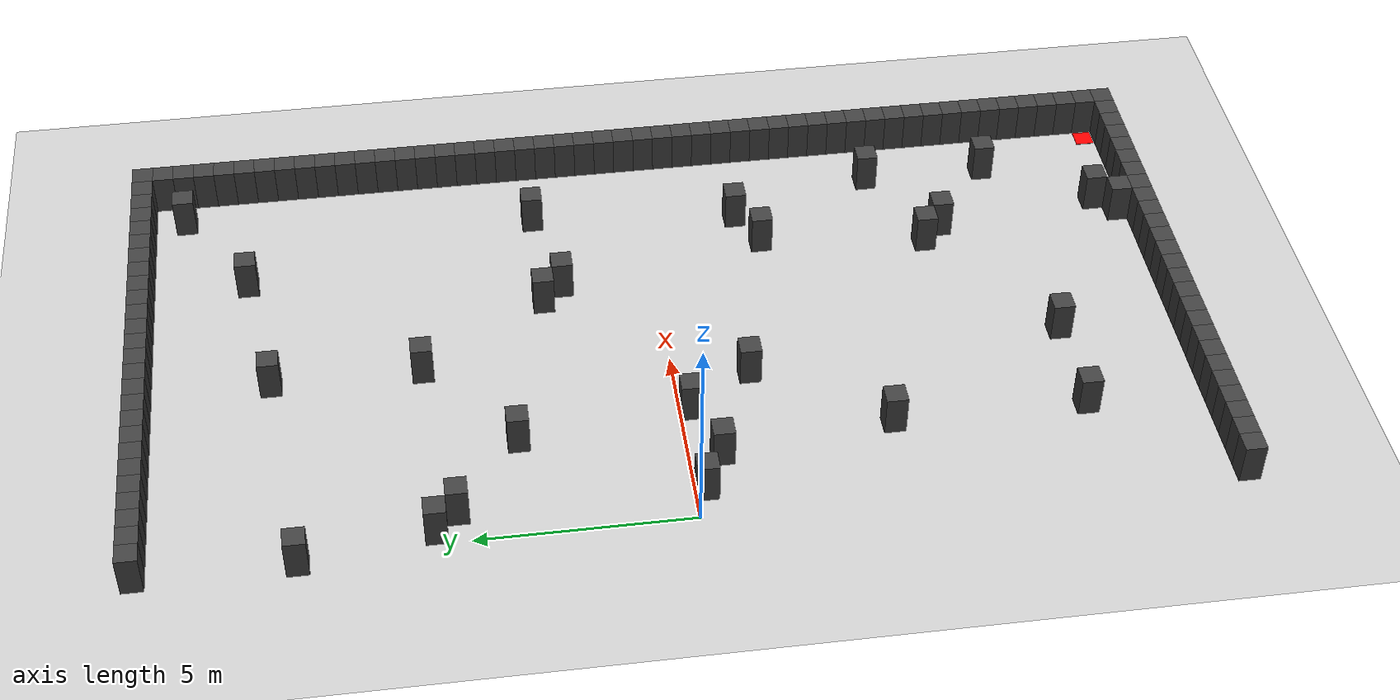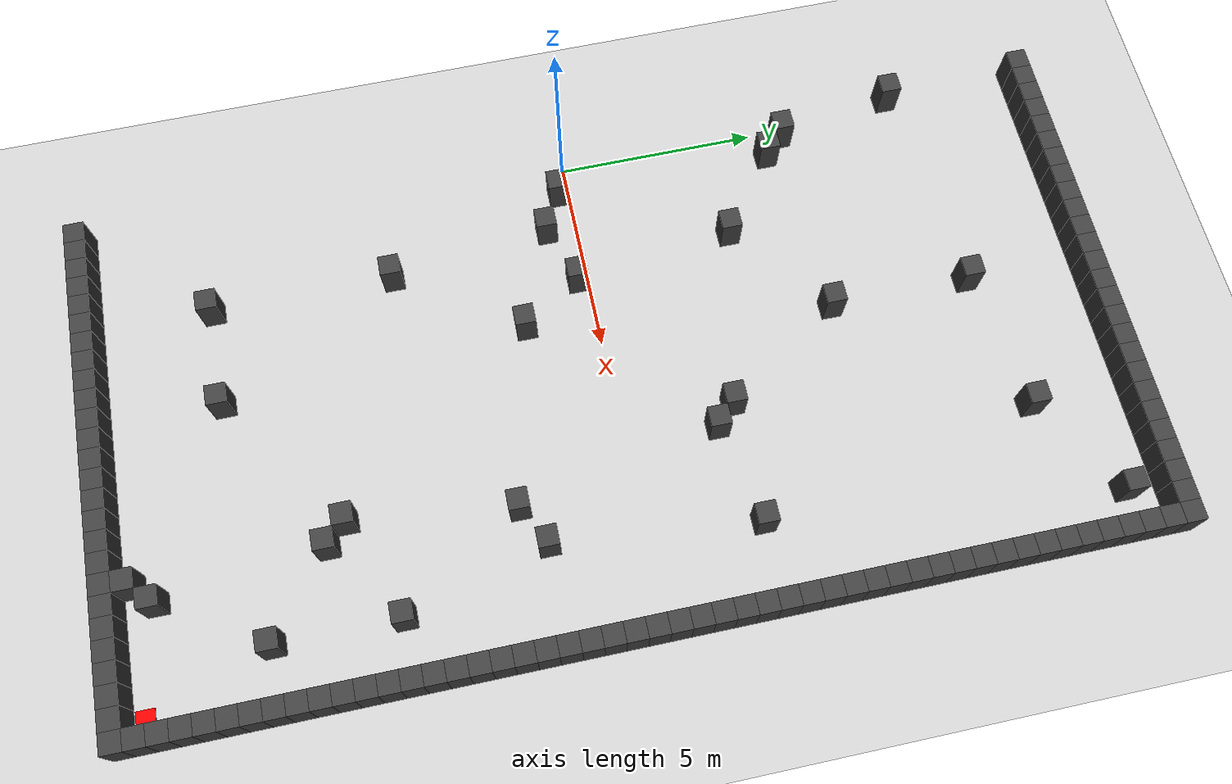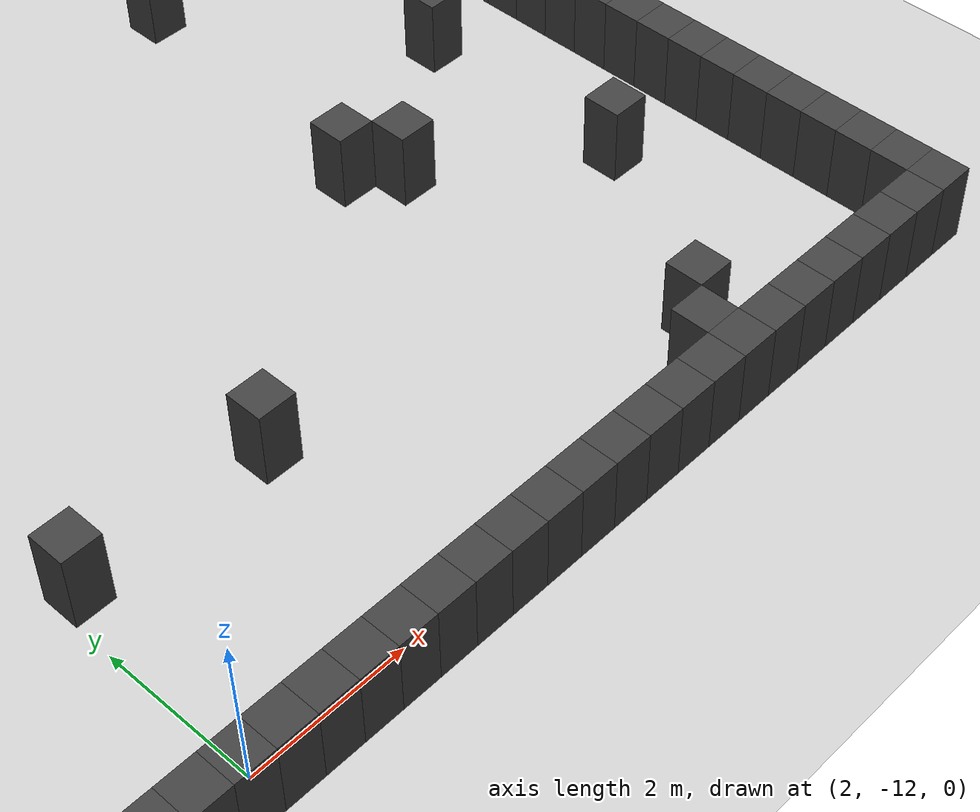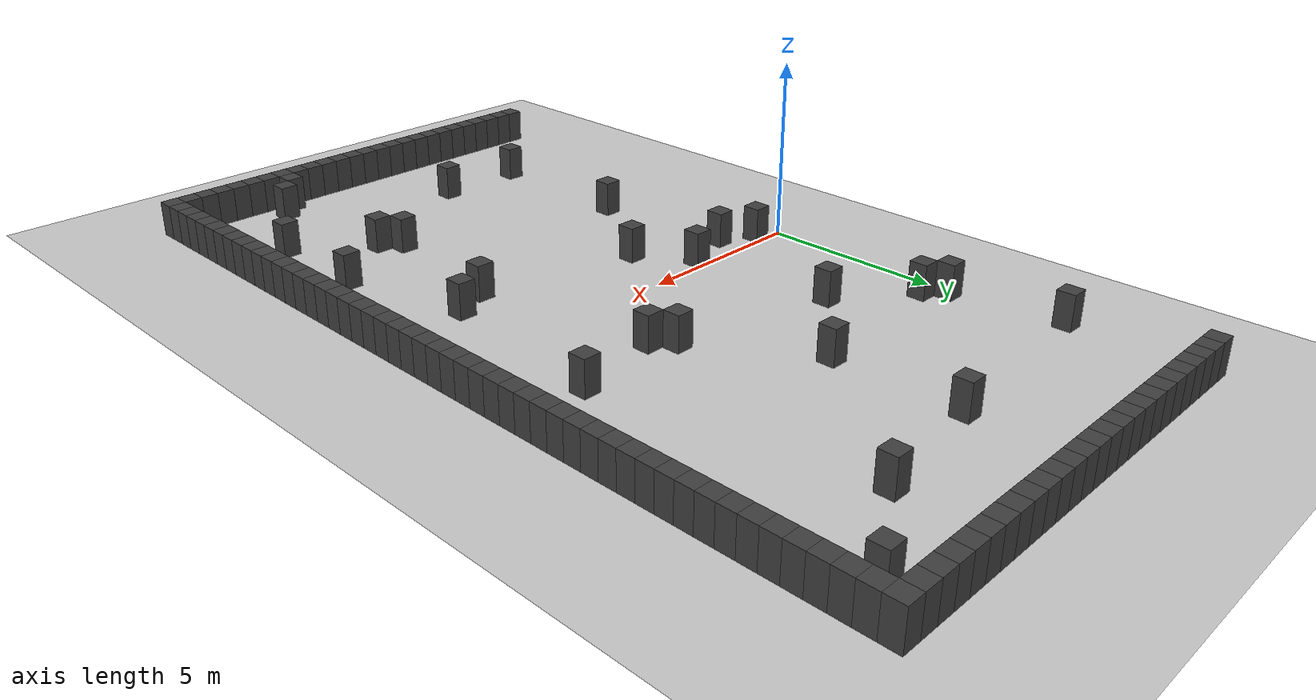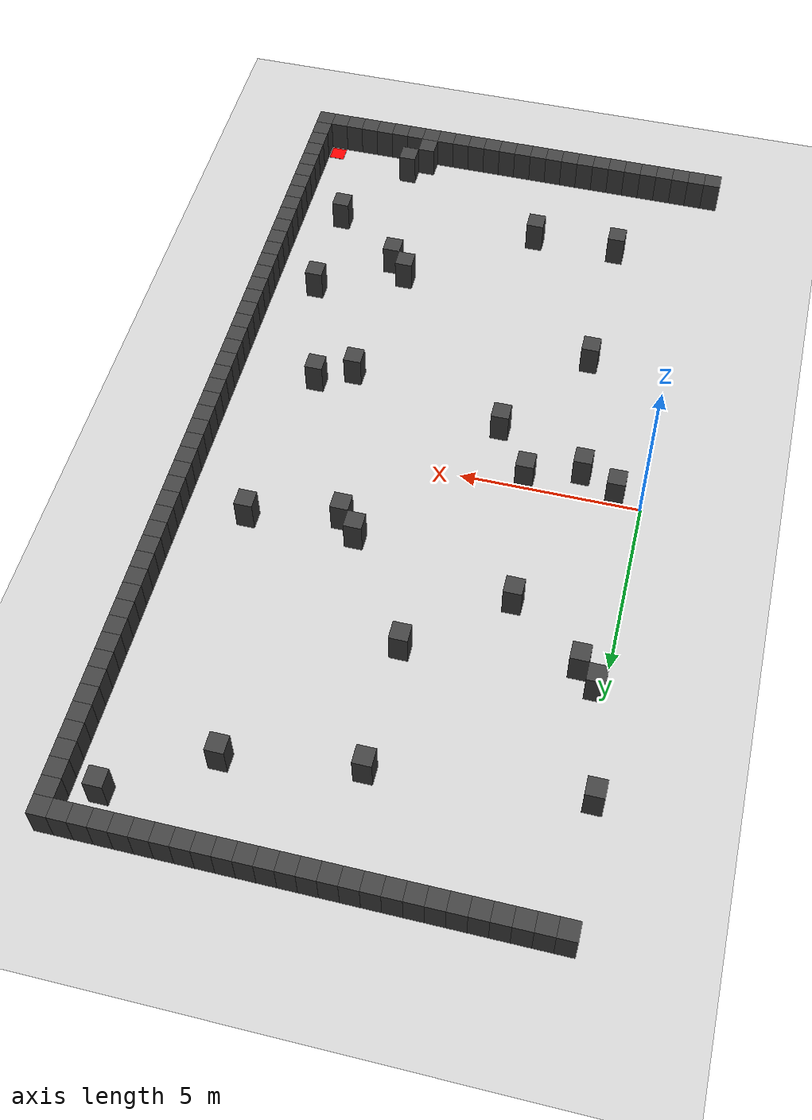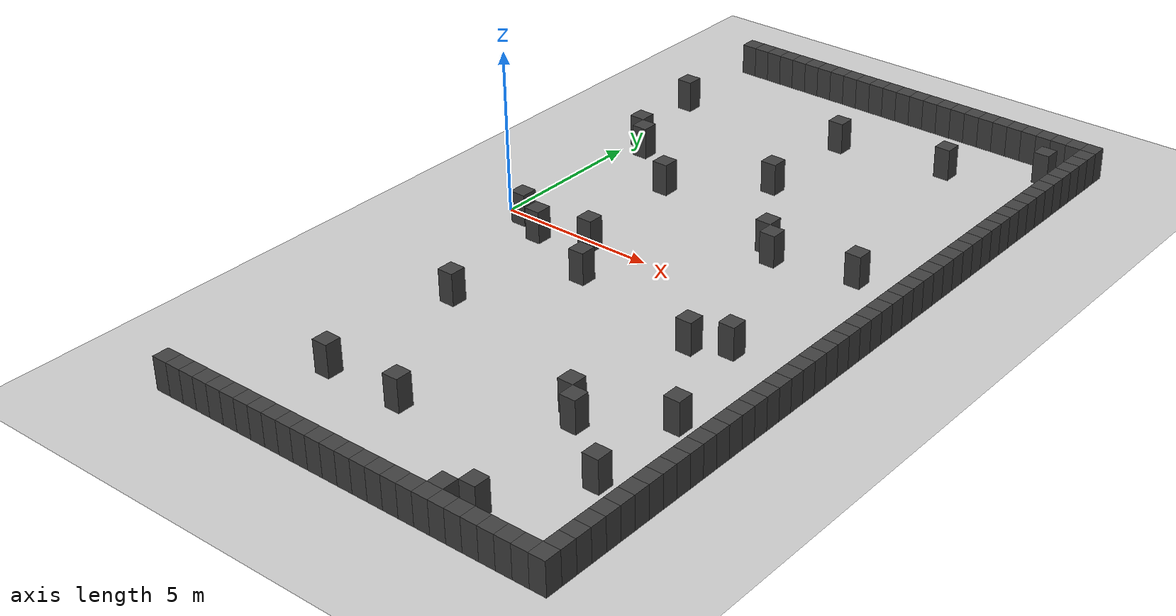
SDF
<sdf version="1.7">
 <world name="map_62">
  <model name="ground_plane">
   <static>true</static>
   <link name="link">
    <collision name="collision">
     <geometry><plane><normal>0 0 1</normal><size>200 200</size></plane></geometry>
    </collision>
    <visual name="visual">
     <geometry><plane><normal>0 0 1</normal><size>200 200</size></plane></geometry>
     <material><ambient>0.8 0.8 0.8 1</ambient><diffuse>0.8 0.8 0.8 1</diffuse></material>
    </visual>
   </link>
  </model>
  <model name="maze_environment">
   <static>true</static>
   <link name="wall_24">
    <pose>-0.250 12.250 0.500 0 0 0</pose>
    <collision name="col"><geometry><box><size>0.5 0.5 1.0</size></box></geometry></collision>
    <visual name="vis">
     <geometry><box><size>0.5 0.5 1.0</size></box></geometry>
     <material><ambient>0.15 0.15 0.15 1</ambient><diffuse>0.25 0.25 0.25 1</diffuse></material>
    </visual>
   </link>
   <link name="wall_25">
    <pose>0.250 12.250 0.500 0 0 0</pose>
    <collision name="col"><geometry><box><size>0.5 0.5 1.0</size></box></geometry></collision>
    <visual name="vis">
     <geometry><box><size>0.5 0.5 1.0</size></box></geometry>
     <material><ambient>0.15 0.15 0.15 1</ambient><diffuse>0.25 0.25 0.25 1</diffuse></material>
    </visual>
   </link>
   <link name="wall_26">
    <pose>0.750 12.250 0.500 0 0 0</pose>
    <collision name="col"><geometry><box><size>0.5 0.5 1.0</size></box></geometry></collision>
    <visual name="vis">
     <geometry><box><size>0.5 0.5 1.0</size></box></geometry>
     <material><ambient>0.15 0.15 0.15 1</ambient><diffuse>0.25 0.25 0.25 1</diffuse></material>
    </visual>
   </link>
   <link name="wall_27">
    <pose>1.250 12.250 0.500 0 0 0</pose>
    <collision name="col"><geometry><box><size>0.5 0.5 1.0</size></box></geometry></collision>
    <visual name="vis">
     <geometry><box><size>0.5 0.5 1.0</size></box></geometry>
     <material><ambient>0.15 0.15 0.15 1</ambient><diffuse>0.25 0.25 0.25 1</diffuse></material>
    </visual>
   </link>
   <link name="wall_28">
    <pose>1.750 12.250 0.500 0 0 0</pose>
    <collision name="col"><geometry><box><size>0.5 0.5 1.0</size></box></geometry></collision>
    <visual name="vis">
     <geometry><box><size>0.5 0.5 1.0</size></box></geometry>
     <material><ambient>0.15 0.15 0.15 1</ambient><diffuse>0.25 0.25 0.25 1</diffuse></material>
    </visual>
   </link>
   <link name="wall_29">
    <pose>2.250 12.250 0.500 0 0 0</pose>
    <collision name="col"><geometry><box><size>0.5 0.5 1.0</size></box></geometry></collision>
    <visual name="vis">
     <geometry><box><size>0.5 0.5 1.0</size></box></geometry>
     <material><ambient>0.15 0.15 0.15 1</ambient><diffuse>0.25 0.25 0.25 1</diffuse></material>
    </visual>
   </link>
   <link name="wall_30">
    <pose>2.750 12.250 0.500 0 0 0</pose>
    <collision name="col"><geometry><box><size>0.5 0.5 1.0</size></box></geometry></collision>
    <visual name="vis">
     <geometry><box><size>0.5 0.5 1.0</size></box></geometry>
     <material><ambient>0.15 0.15 0.15 1</ambient><diffuse>0.25 0.25 0.25 1</diffuse></material>
    </visual>
   </link>
   <link name="wall_31">
    <pose>3.250 12.250 0.500 0 0 0</pose>
    <collision name="col"><geometry><box><size>0.5 0.5 1.0</size></box></geometry></collision>
    <visual name="vis">
     <geometry><box><size>0.5 0.5 1.0</size></box></geometry>
     <material><ambient>0.15 0.15 0.15 1</ambient><diffuse>0.25 0.25 0.25 1</diffuse></material>
    </visual>
   </link>
   <link name="wall_32">
    <pose>3.750 12.250 0.500 0 0 0</pose>
    <collision name="col"><geometry><box><size>0.5 0.5 1.0</size></box></geometry></collision>
    <visual name="vis">
     <geometry><box><size>0.5 0.5 1.0</size></box></geometry>
     <material><ambient>0.15 0.15 0.15 1</ambient><diffuse>0.25 0.25 0.25 1</diffuse></material>
    </visual>
   </link>
   <link name="wall_33">
    <pose>4.250 12.250 0.500 0 0 0</pose>
    <collision name="col"><geometry><box><size>0.5 0.5 1.0</size></box></geometry></collision>
    <visual name="vis">
     <geometry><box><size>0.5 0.5 1.0</size></box></geometry>
     <material><ambient>0.15 0.15 0.15 1</ambient><diffuse>0.25 0.25 0.25 1</diffuse></material>
    </visual>
   </link>
   <link name="wall_34">
    <pose>4.750 12.250 0.500 0 0 0</pose>
    <collision name="col"><geometry><box><size>0.5 0.5 1.0</size></box></geometry></collision>
    <visual name="vis">
     <geometry><box><size>0.5 0.5 1.0</size></box></geometry>
     <material><ambient>0.15 0.15 0.15 1</ambient><diffuse>0.25 0.25 0.25 1</diffuse></material>
    </visual>
   </link>
   <link name="wall_35">
    <pose>5.250 12.250 0.500 0 0 0</pose>
    <collision name="col"><geometry><box><size>0.5 0.5 1.0</size></box></geometry></collision>
    <visual name="vis">
     <geometry><box><size>0.5 0.5 1.0</size></box></geometry>
     <material><ambient>0.15 0.15 0.15 1</ambient><diffuse>0.25 0.25 0.25 1</diffuse></material>
    </visual>
   </link>
   <link name="wall_36">
    <pose>5.750 12.250 0.500 0 0 0</pose>
    <collision name="col"><geometry><box><size>0.5 0.5 1.0</size></box></geometry></collision>
    <visual name="vis">
     <geometry><box><size>0.5 0.5 1.0</size></box></geometry>
     <material><ambient>0.15 0.15 0.15 1</ambient><diffuse>0.25 0.25 0.25 1</diffuse></material>
    </visual>
   </link>
   <link name="wall_37">
    <pose>6.250 12.250 0.500 0 0 0</pose>
    <collision name="col"><geometry><box><size>0.5 0.5 1.0</size></box></geometry></collision>
    <visual name="vis">
     <geometry><box><size>0.5 0.5 1.0</size></box></geometry>
     <material><ambient>0.15 0.15 0.15 1</ambient><diffuse>0.25 0.25 0.25 1</diffuse></material>
    </visual>
   </link>
   <link name="wall_38">
    <pose>6.750 12.250 0.500 0 0 0</pose>
    <collision name="col"><geometry><box><size>0.5 0.5 1.0</size></box></geometry></collision>
    <visual name="vis">
     <geometry><box><size>0.5 0.5 1.0</size></box></geometry>
     <material><ambient>0.15 0.15 0.15 1</ambient><diffuse>0.25 0.25 0.25 1</diffuse></material>
    </visual>
   </link>
   <link name="wall_39">
    <pose>7.250 12.250 0.500 0 0 0</pose>
    <collision name="col"><geometry><box><size>0.5 0.5 1.0</size></box></geometry></collision>
    <visual name="vis">
     <geometry><box><size>0.5 0.5 1.0</size></box></geometry>
     <material><ambient>0.15 0.15 0.15 1</ambient><diffuse>0.25 0.25 0.25 1</diffuse></material>
    </visual>
   </link>
   <link name="wall_40">
    <pose>7.750 12.250 0.500 0 0 0</pose>
    <collision name="col"><geometry><box><size>0.5 0.5 1.0</size></box></geometry></collision>
    <visual name="vis">
     <geometry><box><size>0.5 0.5 1.0</size></box></geometry>
     <material><ambient>0.15 0.15 0.15 1</ambient><diffuse>0.25 0.25 0.25 1</diffuse></material>
    </visual>
   </link>
   <link name="wall_41">
    <pose>8.250 12.250 0.500 0 0 0</pose>
    <collision name="col"><geometry><box><size>0.5 0.5 1.0</size></box></geometry></collision>
    <visual name="vis">
     <geometry><box><size>0.5 0.5 1.0</size></box></geometry>
     <material><ambient>0.15 0.15 0.15 1</ambient><diffuse>0.25 0.25 0.25 1</diffuse></material>
    </visual>
   </link>
   <link name="wall_42">
    <pose>8.750 12.250 0.500 0 0 0</pose>
    <collision name="col"><geometry><box><size>0.5 0.5 1.0</size></box></geometry></collision>
    <visual name="vis">
     <geometry><box><size>0.5 0.5 1.0</size></box></geometry>
     <material><ambient>0.15 0.15 0.15 1</ambient><diffuse>0.25 0.25 0.25 1</diffuse></material>
    </visual>
   </link>
   <link name="wall_43">
    <pose>9.250 12.250 0.500 0 0 0</pose>
    <collision name="col"><geometry><box><size>0.5 0.5 1.0</size></box></geometry></collision>
    <visual name="vis">
     <geometry><box><size>0.5 0.5 1.0</size></box></geometry>
     <material><ambient>0.15 0.15 0.15 1</ambient><diffuse>0.25 0.25 0.25 1</diffuse></material>
    </visual>
   </link>
   <link name="wall_44">
    <pose>9.750 12.250 0.500 0 0 0</pose>
    <collision name="col"><geometry><box><size>0.5 0.5 1.0</size></box></geometry></collision>
    <visual name="vis">
     <geometry><box><size>0.5 0.5 1.0</size></box></geometry>
     <material><ambient>0.15 0.15 0.15 1</ambient><diffuse>0.25 0.25 0.25 1</diffuse></material>
    </visual>
   </link>
   <link name="wall_45">
    <pose>10.250 12.250 0.500 0 0 0</pose>
    <collision name="col"><geometry><box><size>0.5 0.5 1.0</size></box></geometry></collision>
    <visual name="vis">
     <geometry><box><size>0.5 0.5 1.0</size></box></geometry>
     <material><ambient>0.15 0.15 0.15 1</ambient><diffuse>0.25 0.25 0.25 1</diffuse></material>
    </visual>
   </link>
   <link name="wall_46">
    <pose>10.750 12.250 0.500 0 0 0</pose>
    <collision name="col"><geometry><box><size>0.5 0.5 1.0</size></box></geometry></collision>
    <visual name="vis">
     <geometry><box><size>0.5 0.5 1.0</size></box></geometry>
     <material><ambient>0.15 0.15 0.15 1</ambient><diffuse>0.25 0.25 0.25 1</diffuse></material>
    </visual>
   </link>
   <link name="wall_47">
    <pose>11.250 12.250 0.500 0 0 0</pose>
    <collision name="col"><geometry><box><size>0.5 0.5 1.0</size></box></geometry></collision>
    <visual name="vis">
     <geometry><box><size>0.5 0.5 1.0</size></box></geometry>
     <material><ambient>0.15 0.15 0.15 1</ambient><diffuse>0.25 0.25 0.25 1</diffuse></material>
    </visual>
   </link>
   <link name="wall_48">
    <pose>11.750 12.250 0.500 0 0 0</pose>
    <collision name="col"><geometry><box><size>0.5 0.5 1.0</size></box></geometry></collision>
    <visual name="vis">
     <geometry><box><size>0.5 0.5 1.0</size></box></geometry>
     <material><ambient>0.15 0.15 0.15 1</ambient><diffuse>0.25 0.25 0.25 1</diffuse></material>
    </visual>
   </link>
   <link name="wall_49">
    <pose>12.250 12.250 0.500 0 0 0</pose>
    <collision name="col"><geometry><box><size>0.5 0.5 1.0</size></box></geometry></collision>
    <visual name="vis">
     <geometry><box><size>0.5 0.5 1.0</size></box></geometry>
     <material><ambient>0.15 0.15 0.15 1</ambient><diffuse>0.25 0.25 0.25 1</diffuse></material>
    </visual>
   </link>
   <link name="wall_51">
    <pose>12.250 11.750 0.500 0 0 0</pose>
    <collision name="col"><geometry><box><size>0.5 0.5 1.0</size></box></geometry></collision>
    <visual name="vis">
     <geometry><box><size>0.5 0.5 1.0</size></box></geometry>
     <material><ambient>0.15 0.15 0.15 1</ambient><diffuse>0.25 0.25 0.25 1</diffuse></material>
    </visual>
   </link>
   <link name="wall_54">
    <pose>11.250 11.250 0.500 0 0 0</pose>
    <collision name="col"><geometry><box><size>0.5 0.5 1.0</size></box></geometry></collision>
    <visual name="vis">
     <geometry><box><size>0.5 0.5 1.0</size></box></geometry>
     <material><ambient>0.15 0.15 0.15 1</ambient><diffuse>0.25 0.25 0.25 1</diffuse></material>
    </visual>
   </link>
   <link name="wall_55">
    <pose>12.250 11.250 0.500 0 0 0</pose>
    <collision name="col"><geometry><box><size>0.5 0.5 1.0</size></box></geometry></collision>
    <visual name="vis">
     <geometry><box><size>0.5 0.5 1.0</size></box></geometry>
     <material><ambient>0.15 0.15 0.15 1</ambient><diffuse>0.25 0.25 0.25 1</diffuse></material>
    </visual>
   </link>
   <link name="wall_57">
    <pose>12.250 10.750 0.500 0 0 0</pose>
    <collision name="col"><geometry><box><size>0.5 0.5 1.0</size></box></geometry></collision>
    <visual name="vis">
     <geometry><box><size>0.5 0.5 1.0</size></box></geometry>
     <material><ambient>0.15 0.15 0.15 1</ambient><diffuse>0.25 0.25 0.25 1</diffuse></material>
    </visual>
   </link>
   <link name="wall_59">
    <pose>12.250 10.250 0.500 0 0 0</pose>
    <collision name="col"><geometry><box><size>0.5 0.5 1.0</size></box></geometry></collision>
    <visual name="vis">
     <geometry><box><size>0.5 0.5 1.0</size></box></geometry>
     <material><ambient>0.15 0.15 0.15 1</ambient><diffuse>0.25 0.25 0.25 1</diffuse></material>
    </visual>
   </link>
   <link name="wall_63">
    <pose>8.750 9.750 0.500 0 0 0</pose>
    <collision name="col"><geometry><box><size>0.5 0.5 1.0</size></box></geometry></collision>
    <visual name="vis">
     <geometry><box><size>0.5 0.5 1.0</size></box></geometry>
     <material><ambient>0.15 0.15 0.15 1</ambient><diffuse>0.25 0.25 0.25 1</diffuse></material>
    </visual>
   </link>
   <link name="wall_64">
    <pose>12.250 9.750 0.500 0 0 0</pose>
    <collision name="col"><geometry><box><size>0.5 0.5 1.0</size></box></geometry></collision>
    <visual name="vis">
     <geometry><box><size>0.5 0.5 1.0</size></box></geometry>
     <material><ambient>0.15 0.15 0.15 1</ambient><diffuse>0.25 0.25 0.25 1</diffuse></material>
    </visual>
   </link>
   <link name="wall_70">
    <pose>5.250 9.250 0.500 0 0 0</pose>
    <collision name="col"><geometry><box><size>0.5 0.5 1.0</size></box></geometry></collision>
    <visual name="vis">
     <geometry><box><size>0.5 0.5 1.0</size></box></geometry>
     <material><ambient>0.15 0.15 0.15 1</ambient><diffuse>0.25 0.25 0.25 1</diffuse></material>
    </visual>
   </link>
   <link name="wall_71">
    <pose>12.250 9.250 0.500 0 0 0</pose>
    <collision name="col"><geometry><box><size>0.5 0.5 1.0</size></box></geometry></collision>
    <visual name="vis">
     <geometry><box><size>0.5 0.5 1.0</size></box></geometry>
     <material><ambient>0.15 0.15 0.15 1</ambient><diffuse>0.25 0.25 0.25 1</diffuse></material>
    </visual>
   </link>
   <link name="wall_74">
    <pose>-0.250 8.750 0.500 0 0 0</pose>
    <collision name="col"><geometry><box><size>0.5 0.5 1.0</size></box></geometry></collision>
    <visual name="vis">
     <geometry><box><size>0.5 0.5 1.0</size></box></geometry>
     <material><ambient>0.15 0.15 0.15 1</ambient><diffuse>0.25 0.25 0.25 1</diffuse></material>
    </visual>
   </link>
   <link name="wall_75">
    <pose>12.250 8.750 0.500 0 0 0</pose>
    <collision name="col"><geometry><box><size>0.5 0.5 1.0</size></box></geometry></collision>
    <visual name="vis">
     <geometry><box><size>0.5 0.5 1.0</size></box></geometry>
     <material><ambient>0.15 0.15 0.15 1</ambient><diffuse>0.25 0.25 0.25 1</diffuse></material>
    </visual>
   </link>
   <link name="wall_77">
    <pose>12.250 8.250 0.500 0 0 0</pose>
    <collision name="col"><geometry><box><size>0.5 0.5 1.0</size></box></geometry></collision>
    <visual name="vis">
     <geometry><box><size>0.5 0.5 1.0</size></box></geometry>
     <material><ambient>0.15 0.15 0.15 1</ambient><diffuse>0.25 0.25 0.25 1</diffuse></material>
    </visual>
   </link>
   <link name="wall_79">
    <pose>12.250 7.750 0.500 0 0 0</pose>
    <collision name="col"><geometry><box><size>0.5 0.5 1.0</size></box></geometry></collision>
    <visual name="vis">
     <geometry><box><size>0.5 0.5 1.0</size></box></geometry>
     <material><ambient>0.15 0.15 0.15 1</ambient><diffuse>0.25 0.25 0.25 1</diffuse></material>
    </visual>
   </link>
   <link name="wall_81">
    <pose>12.250 7.250 0.500 0 0 0</pose>
    <collision name="col"><geometry><box><size>0.5 0.5 1.0</size></box></geometry></collision>
    <visual name="vis">
     <geometry><box><size>0.5 0.5 1.0</size></box></geometry>
     <material><ambient>0.15 0.15 0.15 1</ambient><diffuse>0.25 0.25 0.25 1</diffuse></material>
    </visual>
   </link>
   <link name="wall_83">
    <pose>12.250 6.750 0.500 0 0 0</pose>
    <collision name="col"><geometry><box><size>0.5 0.5 1.0</size></box></geometry></collision>
    <visual name="vis">
     <geometry><box><size>0.5 0.5 1.0</size></box></geometry>
     <material><ambient>0.15 0.15 0.15 1</ambient><diffuse>0.25 0.25 0.25 1</diffuse></material>
    </visual>
   </link>
   <link name="wall_86">
    <pose>12.250 6.250 0.500 0 0 0</pose>
    <collision name="col"><geometry><box><size>0.5 0.5 1.0</size></box></geometry></collision>
    <visual name="vis">
     <geometry><box><size>0.5 0.5 1.0</size></box></geometry>
     <material><ambient>0.15 0.15 0.15 1</ambient><diffuse>0.25 0.25 0.25 1</diffuse></material>
    </visual>
   </link>
   <link name="wall_88">
    <pose>0.250 5.750 0.500 0 0 0</pose>
    <collision name="col"><geometry><box><size>0.5 0.5 1.0</size></box></geometry></collision>
    <visual name="vis">
     <geometry><box><size>0.5 0.5 1.0</size></box></geometry>
     <material><ambient>0.15 0.15 0.15 1</ambient><diffuse>0.25 0.25 0.25 1</diffuse></material>
    </visual>
   </link>
   <link name="wall_89">
    <pose>5.250 5.750 0.500 0 0 0</pose>
    <collision name="col"><geometry><box><size>0.5 0.5 1.0</size></box></geometry></collision>
    <visual name="vis">
     <geometry><box><size>0.5 0.5 1.0</size></box></geometry>
     <material><ambient>0.15 0.15 0.15 1</ambient><diffuse>0.25 0.25 0.25 1</diffuse></material>
    </visual>
   </link>
   <link name="wall_90">
    <pose>12.250 5.750 0.500 0 0 0</pose>
    <collision name="col"><geometry><box><size>0.5 0.5 1.0</size></box></geometry></collision>
    <visual name="vis">
     <geometry><box><size>0.5 0.5 1.0</size></box></geometry>
     <material><ambient>0.15 0.15 0.15 1</ambient><diffuse>0.25 0.25 0.25 1</diffuse></material>
    </visual>
   </link>
   <link name="wall_92">
    <pose>0.750 5.250 0.500 0 0 0</pose>
    <collision name="col"><geometry><box><size>0.5 0.5 1.0</size></box></geometry></collision>
    <visual name="vis">
     <geometry><box><size>0.5 0.5 1.0</size></box></geometry>
     <material><ambient>0.15 0.15 0.15 1</ambient><diffuse>0.25 0.25 0.25 1</diffuse></material>
    </visual>
   </link>
   <link name="wall_93">
    <pose>12.250 5.250 0.500 0 0 0</pose>
    <collision name="col"><geometry><box><size>0.5 0.5 1.0</size></box></geometry></collision>
    <visual name="vis">
     <geometry><box><size>0.5 0.5 1.0</size></box></geometry>
     <material><ambient>0.15 0.15 0.15 1</ambient><diffuse>0.25 0.25 0.25 1</diffuse></material>
    </visual>
   </link>
   <link name="wall_95">
    <pose>12.250 4.750 0.500 0 0 0</pose>
    <collision name="col"><geometry><box><size>0.5 0.5 1.0</size></box></geometry></collision>
    <visual name="vis">
     <geometry><box><size>0.5 0.5 1.0</size></box></geometry>
     <material><ambient>0.15 0.15 0.15 1</ambient><diffuse>0.25 0.25 0.25 1</diffuse></material>
    </visual>
   </link>
   <link name="wall_98">
    <pose>12.250 4.250 0.500 0 0 0</pose>
    <collision name="col"><geometry><box><size>0.5 0.5 1.0</size></box></geometry></collision>
    <visual name="vis">
     <geometry><box><size>0.5 0.5 1.0</size></box></geometry>
     <material><ambient>0.15 0.15 0.15 1</ambient><diffuse>0.25 0.25 0.25 1</diffuse></material>
    </visual>
   </link>
   <link name="wall_100">
    <pose>2.750 3.750 0.500 0 0 0</pose>
    <collision name="col"><geometry><box><size>0.5 0.5 1.0</size></box></geometry></collision>
    <visual name="vis">
     <geometry><box><size>0.5 0.5 1.0</size></box></geometry>
     <material><ambient>0.15 0.15 0.15 1</ambient><diffuse>0.25 0.25 0.25 1</diffuse></material>
    </visual>
   </link>
   <link name="wall_101">
    <pose>12.250 3.750 0.500 0 0 0</pose>
    <collision name="col"><geometry><box><size>0.5 0.5 1.0</size></box></geometry></collision>
    <visual name="vis">
     <geometry><box><size>0.5 0.5 1.0</size></box></geometry>
     <material><ambient>0.15 0.15 0.15 1</ambient><diffuse>0.25 0.25 0.25 1</diffuse></material>
    </visual>
   </link>
   <link name="wall_103">
    <pose>12.250 3.250 0.500 0 0 0</pose>
    <collision name="col"><geometry><box><size>0.5 0.5 1.0</size></box></geometry></collision>
    <visual name="vis">
     <geometry><box><size>0.5 0.5 1.0</size></box></geometry>
     <material><ambient>0.15 0.15 0.15 1</ambient><diffuse>0.25 0.25 0.25 1</diffuse></material>
    </visual>
   </link>
   <link name="wall_105">
    <pose>7.250 2.750 0.500 0 0 0</pose>
    <collision name="col"><geometry><box><size>0.5 0.5 1.0</size></box></geometry></collision>
    <visual name="vis">
     <geometry><box><size>0.5 0.5 1.0</size></box></geometry>
     <material><ambient>0.15 0.15 0.15 1</ambient><diffuse>0.25 0.25 0.25 1</diffuse></material>
    </visual>
   </link>
   <link name="wall_106">
    <pose>10.250 2.750 0.500 0 0 0</pose>
    <collision name="col"><geometry><box><size>0.5 0.5 1.0</size></box></geometry></collision>
    <visual name="vis">
     <geometry><box><size>0.5 0.5 1.0</size></box></geometry>
     <material><ambient>0.15 0.15 0.15 1</ambient><diffuse>0.25 0.25 0.25 1</diffuse></material>
    </visual>
   </link>
   <link name="wall_107">
    <pose>12.250 2.750 0.500 0 0 0</pose>
    <collision name="col"><geometry><box><size>0.5 0.5 1.0</size></box></geometry></collision>
    <visual name="vis">
     <geometry><box><size>0.5 0.5 1.0</size></box></geometry>
     <material><ambient>0.15 0.15 0.15 1</ambient><diffuse>0.25 0.25 0.25 1</diffuse></material>
    </visual>
   </link>
   <link name="wall_109">
    <pose>7.750 2.250 0.500 0 0 0</pose>
    <collision name="col"><geometry><box><size>0.5 0.5 1.0</size></box></geometry></collision>
    <visual name="vis">
     <geometry><box><size>0.5 0.5 1.0</size></box></geometry>
     <material><ambient>0.15 0.15 0.15 1</ambient><diffuse>0.25 0.25 0.25 1</diffuse></material>
    </visual>
   </link>
   <link name="wall_110">
    <pose>12.250 2.250 0.500 0 0 0</pose>
    <collision name="col"><geometry><box><size>0.5 0.5 1.0</size></box></geometry></collision>
    <visual name="vis">
     <geometry><box><size>0.5 0.5 1.0</size></box></geometry>
     <material><ambient>0.15 0.15 0.15 1</ambient><diffuse>0.25 0.25 0.25 1</diffuse></material>
    </visual>
   </link>
   <link name="wall_112">
    <pose>12.250 1.750 0.500 0 0 0</pose>
    <collision name="col"><geometry><box><size>0.5 0.5 1.0</size></box></geometry></collision>
    <visual name="vis">
     <geometry><box><size>0.5 0.5 1.0</size></box></geometry>
     <material><ambient>0.15 0.15 0.15 1</ambient><diffuse>0.25 0.25 0.25 1</diffuse></material>
    </visual>
   </link>
   <link name="wall_115">
    <pose>12.250 1.250 0.500 0 0 0</pose>
    <collision name="col"><geometry><box><size>0.5 0.5 1.0</size></box></geometry></collision>
    <visual name="vis">
     <geometry><box><size>0.5 0.5 1.0</size></box></geometry>
     <material><ambient>0.15 0.15 0.15 1</ambient><diffuse>0.25 0.25 0.25 1</diffuse></material>
    </visual>
   </link>
   <link name="wall_118">
    <pose>12.250 0.750 0.500 0 0 0</pose>
    <collision name="col"><geometry><box><size>0.5 0.5 1.0</size></box></geometry></collision>
    <visual name="vis">
     <geometry><box><size>0.5 0.5 1.0</size></box></geometry>
     <material><ambient>0.15 0.15 0.15 1</ambient><diffuse>0.25 0.25 0.25 1</diffuse></material>
    </visual>
   </link>
   <link name="wall_120">
    <pose>12.250 0.250 0.500 0 0 0</pose>
    <collision name="col"><geometry><box><size>0.5 0.5 1.0</size></box></geometry></collision>
    <visual name="vis">
     <geometry><box><size>0.5 0.5 1.0</size></box></geometry>
     <material><ambient>0.15 0.15 0.15 1</ambient><diffuse>0.25 0.25 0.25 1</diffuse></material>
    </visual>
   </link>
   <link name="wall_123">
    <pose>0.750 -0.250 0.500 0 0 0</pose>
    <collision name="col"><geometry><box><size>0.5 0.5 1.0</size></box></geometry></collision>
    <visual name="vis">
     <geometry><box><size>0.5 0.5 1.0</size></box></geometry>
     <material><ambient>0.15 0.15 0.15 1</ambient><diffuse>0.25 0.25 0.25 1</diffuse></material>
    </visual>
   </link>
   <link name="wall_124">
    <pose>3.250 -0.250 0.500 0 0 0</pose>
    <collision name="col"><geometry><box><size>0.5 0.5 1.0</size></box></geometry></collision>
    <visual name="vis">
     <geometry><box><size>0.5 0.5 1.0</size></box></geometry>
     <material><ambient>0.15 0.15 0.15 1</ambient><diffuse>0.25 0.25 0.25 1</diffuse></material>
    </visual>
   </link>
   <link name="wall_125">
    <pose>12.250 -0.250 0.500 0 0 0</pose>
    <collision name="col"><geometry><box><size>0.5 0.5 1.0</size></box></geometry></collision>
    <visual name="vis">
     <geometry><box><size>0.5 0.5 1.0</size></box></geometry>
     <material><ambient>0.15 0.15 0.15 1</ambient><diffuse>0.25 0.25 0.25 1</diffuse></material>
    </visual>
   </link>
   <link name="wall_127">
    <pose>1.750 -0.750 0.500 0 0 0</pose>
    <collision name="col"><geometry><box><size>0.5 0.5 1.0</size></box></geometry></collision>
    <visual name="vis">
     <geometry><box><size>0.5 0.5 1.0</size></box></geometry>
     <material><ambient>0.15 0.15 0.15 1</ambient><diffuse>0.25 0.25 0.25 1</diffuse></material>
    </visual>
   </link>
   <link name="wall_128">
    <pose>12.250 -0.750 0.500 0 0 0</pose>
    <collision name="col"><geometry><box><size>0.5 0.5 1.0</size></box></geometry></collision>
    <visual name="vis">
     <geometry><box><size>0.5 0.5 1.0</size></box></geometry>
     <material><ambient>0.15 0.15 0.15 1</ambient><diffuse>0.25 0.25 0.25 1</diffuse></material>
    </visual>
   </link>
   <link name="wall_130">
    <pose>12.250 -1.250 0.500 0 0 0</pose>
    <collision name="col"><geometry><box><size>0.5 0.5 1.0</size></box></geometry></collision>
    <visual name="vis">
     <geometry><box><size>0.5 0.5 1.0</size></box></geometry>
     <material><ambient>0.15 0.15 0.15 1</ambient><diffuse>0.25 0.25 0.25 1</diffuse></material>
    </visual>
   </link>
   <link name="wall_132">
    <pose>4.250 -1.750 0.500 0 0 0</pose>
    <collision name="col"><geometry><box><size>0.5 0.5 1.0</size></box></geometry></collision>
    <visual name="vis">
     <geometry><box><size>0.5 0.5 1.0</size></box></geometry>
     <material><ambient>0.15 0.15 0.15 1</ambient><diffuse>0.25 0.25 0.25 1</diffuse></material>
    </visual>
   </link>
   <link name="wall_133">
    <pose>12.250 -1.750 0.500 0 0 0</pose>
    <collision name="col"><geometry><box><size>0.5 0.5 1.0</size></box></geometry></collision>
    <visual name="vis">
     <geometry><box><size>0.5 0.5 1.0</size></box></geometry>
     <material><ambient>0.15 0.15 0.15 1</ambient><diffuse>0.25 0.25 0.25 1</diffuse></material>
    </visual>
   </link>
   <link name="wall_135">
    <pose>9.750 -2.250 0.500 0 0 0</pose>
    <collision name="col"><geometry><box><size>0.5 0.5 1.0</size></box></geometry></collision>
    <visual name="vis">
     <geometry><box><size>0.5 0.5 1.0</size></box></geometry>
     <material><ambient>0.15 0.15 0.15 1</ambient><diffuse>0.25 0.25 0.25 1</diffuse></material>
    </visual>
   </link>
   <link name="wall_136">
    <pose>12.250 -2.250 0.500 0 0 0</pose>
    <collision name="col"><geometry><box><size>0.5 0.5 1.0</size></box></geometry></collision>
    <visual name="vis">
     <geometry><box><size>0.5 0.5 1.0</size></box></geometry>
     <material><ambient>0.15 0.15 0.15 1</ambient><diffuse>0.25 0.25 0.25 1</diffuse></material>
    </visual>
   </link>
   <link name="wall_138">
    <pose>8.750 -2.750 0.500 0 0 0</pose>
    <collision name="col"><geometry><box><size>0.5 0.5 1.0</size></box></geometry></collision>
    <visual name="vis">
     <geometry><box><size>0.5 0.5 1.0</size></box></geometry>
     <material><ambient>0.15 0.15 0.15 1</ambient><diffuse>0.25 0.25 0.25 1</diffuse></material>
    </visual>
   </link>
   <link name="wall_139">
    <pose>12.250 -2.750 0.500 0 0 0</pose>
    <collision name="col"><geometry><box><size>0.5 0.5 1.0</size></box></geometry></collision>
    <visual name="vis">
     <geometry><box><size>0.5 0.5 1.0</size></box></geometry>
     <material><ambient>0.15 0.15 0.15 1</ambient><diffuse>0.25 0.25 0.25 1</diffuse></material>
    </visual>
   </link>
   <link name="wall_142">
    <pose>12.250 -3.250 0.500 0 0 0</pose>
    <collision name="col"><geometry><box><size>0.5 0.5 1.0</size></box></geometry></collision>
    <visual name="vis">
     <geometry><box><size>0.5 0.5 1.0</size></box></geometry>
     <material><ambient>0.15 0.15 0.15 1</ambient><diffuse>0.25 0.25 0.25 1</diffuse></material>
    </visual>
   </link>
   <link name="wall_144">
    <pose>12.250 -3.750 0.500 0 0 0</pose>
    <collision name="col"><geometry><box><size>0.5 0.5 1.0</size></box></geometry></collision>
    <visual name="vis">
     <geometry><box><size>0.5 0.5 1.0</size></box></geometry>
     <material><ambient>0.15 0.15 0.15 1</ambient><diffuse>0.25 0.25 0.25 1</diffuse></material>
    </visual>
   </link>
   <link name="wall_147">
    <pose>12.250 -4.250 0.500 0 0 0</pose>
    <collision name="col"><geometry><box><size>0.5 0.5 1.0</size></box></geometry></collision>
    <visual name="vis">
     <geometry><box><size>0.5 0.5 1.0</size></box></geometry>
     <material><ambient>0.15 0.15 0.15 1</ambient><diffuse>0.25 0.25 0.25 1</diffuse></material>
    </visual>
   </link>
   <link name="wall_150">
    <pose>2.250 -4.750 0.500 0 0 0</pose>
    <collision name="col"><geometry><box><size>0.5 0.5 1.0</size></box></geometry></collision>
    <visual name="vis">
     <geometry><box><size>0.5 0.5 1.0</size></box></geometry>
     <material><ambient>0.15 0.15 0.15 1</ambient><diffuse>0.25 0.25 0.25 1</diffuse></material>
    </visual>
   </link>
   <link name="wall_151">
    <pose>12.250 -4.750 0.500 0 0 0</pose>
    <collision name="col"><geometry><box><size>0.5 0.5 1.0</size></box></geometry></collision>
    <visual name="vis">
     <geometry><box><size>0.5 0.5 1.0</size></box></geometry>
     <material><ambient>0.15 0.15 0.15 1</ambient><diffuse>0.25 0.25 0.25 1</diffuse></material>
    </visual>
   </link>
   <link name="wall_154">
    <pose>12.250 -5.250 0.500 0 0 0</pose>
    <collision name="col"><geometry><box><size>0.5 0.5 1.0</size></box></geometry></collision>
    <visual name="vis">
     <geometry><box><size>0.5 0.5 1.0</size></box></geometry>
     <material><ambient>0.15 0.15 0.15 1</ambient><diffuse>0.25 0.25 0.25 1</diffuse></material>
    </visual>
   </link>
   <link name="wall_157">
    <pose>10.750 -5.750 0.500 0 0 0</pose>
    <collision name="col"><geometry><box><size>0.5 0.5 1.0</size></box></geometry></collision>
    <visual name="vis">
     <geometry><box><size>0.5 0.5 1.0</size></box></geometry>
     <material><ambient>0.15 0.15 0.15 1</ambient><diffuse>0.25 0.25 0.25 1</diffuse></material>
    </visual>
   </link>
   <link name="wall_158">
    <pose>12.250 -5.750 0.500 0 0 0</pose>
    <collision name="col"><geometry><box><size>0.5 0.5 1.0</size></box></geometry></collision>
    <visual name="vis">
     <geometry><box><size>0.5 0.5 1.0</size></box></geometry>
     <material><ambient>0.15 0.15 0.15 1</ambient><diffuse>0.25 0.25 0.25 1</diffuse></material>
    </visual>
   </link>
   <link name="wall_161">
    <pose>12.250 -6.250 0.500 0 0 0</pose>
    <collision name="col"><geometry><box><size>0.5 0.5 1.0</size></box></geometry></collision>
    <visual name="vis">
     <geometry><box><size>0.5 0.5 1.0</size></box></geometry>
     <material><ambient>0.15 0.15 0.15 1</ambient><diffuse>0.25 0.25 0.25 1</diffuse></material>
    </visual>
   </link>
   <link name="wall_164">
    <pose>8.250 -6.750 0.500 0 0 0</pose>
    <collision name="col"><geometry><box><size>0.5 0.5 1.0</size></box></geometry></collision>
    <visual name="vis">
     <geometry><box><size>0.5 0.5 1.0</size></box></geometry>
     <material><ambient>0.15 0.15 0.15 1</ambient><diffuse>0.25 0.25 0.25 1</diffuse></material>
    </visual>
   </link>
   <link name="wall_165">
    <pose>12.250 -6.750 0.500 0 0 0</pose>
    <collision name="col"><geometry><box><size>0.5 0.5 1.0</size></box></geometry></collision>
    <visual name="vis">
     <geometry><box><size>0.5 0.5 1.0</size></box></geometry>
     <material><ambient>0.15 0.15 0.15 1</ambient><diffuse>0.25 0.25 0.25 1</diffuse></material>
    </visual>
   </link>
   <link name="wall_169">
    <pose>8.750 -7.250 0.500 0 0 0</pose>
    <collision name="col"><geometry><box><size>0.5 0.5 1.0</size></box></geometry></collision>
    <visual name="vis">
     <geometry><box><size>0.5 0.5 1.0</size></box></geometry>
     <material><ambient>0.15 0.15 0.15 1</ambient><diffuse>0.25 0.25 0.25 1</diffuse></material>
    </visual>
   </link>
   <link name="wall_170">
    <pose>12.250 -7.250 0.500 0 0 0</pose>
    <collision name="col"><geometry><box><size>0.5 0.5 1.0</size></box></geometry></collision>
    <visual name="vis">
     <geometry><box><size>0.5 0.5 1.0</size></box></geometry>
     <material><ambient>0.15 0.15 0.15 1</ambient><diffuse>0.25 0.25 0.25 1</diffuse></material>
    </visual>
   </link>
   <link name="wall_172">
    <pose>12.250 -7.750 0.500 0 0 0</pose>
    <collision name="col"><geometry><box><size>0.5 0.5 1.0</size></box></geometry></collision>
    <visual name="vis">
     <geometry><box><size>0.5 0.5 1.0</size></box></geometry>
     <material><ambient>0.15 0.15 0.15 1</ambient><diffuse>0.25 0.25 0.25 1</diffuse></material>
    </visual>
   </link>
   <link name="wall_175">
    <pose>12.250 -8.250 0.500 0 0 0</pose>
    <collision name="col"><geometry><box><size>0.5 0.5 1.0</size></box></geometry></collision>
    <visual name="vis">
     <geometry><box><size>0.5 0.5 1.0</size></box></geometry>
     <material><ambient>0.15 0.15 0.15 1</ambient><diffuse>0.25 0.25 0.25 1</diffuse></material>
    </visual>
   </link>
   <link name="wall_177">
    <pose>10.750 -8.750 0.500 0 0 0</pose>
    <collision name="col"><geometry><box><size>0.5 0.5 1.0</size></box></geometry></collision>
    <visual name="vis">
     <geometry><box><size>0.5 0.5 1.0</size></box></geometry>
     <material><ambient>0.15 0.15 0.15 1</ambient><diffuse>0.25 0.25 0.25 1</diffuse></material>
    </visual>
   </link>
   <link name="wall_178">
    <pose>12.250 -8.750 0.500 0 0 0</pose>
    <collision name="col"><geometry><box><size>0.5 0.5 1.0</size></box></geometry></collision>
    <visual name="vis">
     <geometry><box><size>0.5 0.5 1.0</size></box></geometry>
     <material><ambient>0.15 0.15 0.15 1</ambient><diffuse>0.25 0.25 0.25 1</diffuse></material>
    </visual>
   </link>
   <link name="wall_181">
    <pose>2.250 -9.250 0.500 0 0 0</pose>
    <collision name="col"><geometry><box><size>0.5 0.5 1.0</size></box></geometry></collision>
    <visual name="vis">
     <geometry><box><size>0.5 0.5 1.0</size></box></geometry>
     <material><ambient>0.15 0.15 0.15 1</ambient><diffuse>0.25 0.25 0.25 1</diffuse></material>
    </visual>
   </link>
   <link name="wall_182">
    <pose>4.750 -9.250 0.500 0 0 0</pose>
    <collision name="col"><geometry><box><size>0.5 0.5 1.0</size></box></geometry></collision>
    <visual name="vis">
     <geometry><box><size>0.5 0.5 1.0</size></box></geometry>
     <material><ambient>0.15 0.15 0.15 1</ambient><diffuse>0.25 0.25 0.25 1</diffuse></material>
    </visual>
   </link>
   <link name="wall_183">
    <pose>12.250 -9.250 0.500 0 0 0</pose>
    <collision name="col"><geometry><box><size>0.5 0.5 1.0</size></box></geometry></collision>
    <visual name="vis">
     <geometry><box><size>0.5 0.5 1.0</size></box></geometry>
     <material><ambient>0.15 0.15 0.15 1</ambient><diffuse>0.25 0.25 0.25 1</diffuse></material>
    </visual>
   </link>
   <link name="wall_186">
    <pose>12.250 -9.750 0.500 0 0 0</pose>
    <collision name="col"><geometry><box><size>0.5 0.5 1.0</size></box></geometry></collision>
    <visual name="vis">
     <geometry><box><size>0.5 0.5 1.0</size></box></geometry>
     <material><ambient>0.15 0.15 0.15 1</ambient><diffuse>0.25 0.25 0.25 1</diffuse></material>
    </visual>
   </link>
   <link name="wall_190">
    <pose>12.250 -10.250 0.500 0 0 0</pose>
    <collision name="col"><geometry><box><size>0.5 0.5 1.0</size></box></geometry></collision>
    <visual name="vis">
     <geometry><box><size>0.5 0.5 1.0</size></box></geometry>
     <material><ambient>0.15 0.15 0.15 1</ambient><diffuse>0.25 0.25 0.25 1</diffuse></material>
    </visual>
   </link>
   <link name="wall_194">
    <pose>12.250 -10.750 0.500 0 0 0</pose>
    <collision name="col"><geometry><box><size>0.5 0.5 1.0</size></box></geometry></collision>
    <visual name="vis">
     <geometry><box><size>0.5 0.5 1.0</size></box></geometry>
     <material><ambient>0.15 0.15 0.15 1</ambient><diffuse>0.25 0.25 0.25 1</diffuse></material>
    </visual>
   </link>
   <link name="wall_196">
    <pose>9.250 -11.250 0.500 0 0 0</pose>
    <collision name="col"><geometry><box><size>0.5 0.5 1.0</size></box></geometry></collision>
    <visual name="vis">
     <geometry><box><size>0.5 0.5 1.0</size></box></geometry>
     <material><ambient>0.15 0.15 0.15 1</ambient><diffuse>0.25 0.25 0.25 1</diffuse></material>
    </visual>
   </link>
   <link name="wall_197">
    <pose>12.250 -11.250 0.500 0 0 0</pose>
    <collision name="col"><geometry><box><size>0.5 0.5 1.0</size></box></geometry></collision>
    <visual name="vis">
     <geometry><box><size>0.5 0.5 1.0</size></box></geometry>
     <material><ambient>0.15 0.15 0.15 1</ambient><diffuse>0.25 0.25 0.25 1</diffuse></material>
    </visual>
   </link>
   <link name="wall_199">
    <pose>8.750 -11.750 0.500 0 0 0</pose>
    <collision name="col"><geometry><box><size>0.5 0.5 1.0</size></box></geometry></collision>
    <visual name="vis">
     <geometry><box><size>0.5 0.5 1.0</size></box></geometry>
     <material><ambient>0.15 0.15 0.15 1</ambient><diffuse>0.25 0.25 0.25 1</diffuse></material>
    </visual>
   </link>
   <link name="wall_200">
    <pose>12.250 -11.750 0.500 0 0 0</pose>
    <collision name="col"><geometry><box><size>0.5 0.5 1.0</size></box></geometry></collision>
    <visual name="vis">
     <geometry><box><size>0.5 0.5 1.0</size></box></geometry>
     <material><ambient>0.15 0.15 0.15 1</ambient><diffuse>0.25 0.25 0.25 1</diffuse></material>
    </visual>
   </link>
   <link name="wall_225">
    <pose>-0.250 -12.250 0.500 0 0 0</pose>
    <collision name="col"><geometry><box><size>0.5 0.5 1.0</size></box></geometry></collision>
    <visual name="vis">
     <geometry><box><size>0.5 0.5 1.0</size></box></geometry>
     <material><ambient>0.15 0.15 0.15 1</ambient><diffuse>0.25 0.25 0.25 1</diffuse></material>
    </visual>
   </link>
   <link name="wall_226">
    <pose>0.250 -12.250 0.500 0 0 0</pose>
    <collision name="col"><geometry><box><size>0.5 0.5 1.0</size></box></geometry></collision>
    <visual name="vis">
     <geometry><box><size>0.5 0.5 1.0</size></box></geometry>
     <material><ambient>0.15 0.15 0.15 1</ambient><diffuse>0.25 0.25 0.25 1</diffuse></material>
    </visual>
   </link>
   <link name="wall_227">
    <pose>0.750 -12.250 0.500 0 0 0</pose>
    <collision name="col"><geometry><box><size>0.5 0.5 1.0</size></box></geometry></collision>
    <visual name="vis">
     <geometry><box><size>0.5 0.5 1.0</size></box></geometry>
     <material><ambient>0.15 0.15 0.15 1</ambient><diffuse>0.25 0.25 0.25 1</diffuse></material>
    </visual>
   </link>
   <link name="wall_228">
    <pose>1.250 -12.250 0.500 0 0 0</pose>
    <collision name="col"><geometry><box><size>0.5 0.5 1.0</size></box></geometry></collision>
    <visual name="vis">
     <geometry><box><size>0.5 0.5 1.0</size></box></geometry>
     <material><ambient>0.15 0.15 0.15 1</ambient><diffuse>0.25 0.25 0.25 1</diffuse></material>
    </visual>
   </link>
   <link name="wall_229">
    <pose>1.750 -12.250 0.500 0 0 0</pose>
    <collision name="col"><geometry><box><size>0.5 0.5 1.0</size></box></geometry></collision>
    <visual name="vis">
     <geometry><box><size>0.5 0.5 1.0</size></box></geometry>
     <material><ambient>0.15 0.15 0.15 1</ambient><diffuse>0.25 0.25 0.25 1</diffuse></material>
    </visual>
   </link>
   <link name="wall_230">
    <pose>2.250 -12.250 0.500 0 0 0</pose>
    <collision name="col"><geometry><box><size>0.5 0.5 1.0</size></box></geometry></collision>
    <visual name="vis">
     <geometry><box><size>0.5 0.5 1.0</size></box></geometry>
     <material><ambient>0.15 0.15 0.15 1</ambient><diffuse>0.25 0.25 0.25 1</diffuse></material>
    </visual>
   </link>
   <link name="wall_231">
    <pose>2.750 -12.250 0.500 0 0 0</pose>
    <collision name="col"><geometry><box><size>0.5 0.5 1.0</size></box></geometry></collision>
    <visual name="vis">
     <geometry><box><size>0.5 0.5 1.0</size></box></geometry>
     <material><ambient>0.15 0.15 0.15 1</ambient><diffuse>0.25 0.25 0.25 1</diffuse></material>
    </visual>
   </link>
   <link name="wall_232">
    <pose>3.250 -12.250 0.500 0 0 0</pose>
    <collision name="col"><geometry><box><size>0.5 0.5 1.0</size></box></geometry></collision>
    <visual name="vis">
     <geometry><box><size>0.5 0.5 1.0</size></box></geometry>
     <material><ambient>0.15 0.15 0.15 1</ambient><diffuse>0.25 0.25 0.25 1</diffuse></material>
    </visual>
   </link>
   <link name="wall_233">
    <pose>3.750 -12.250 0.500 0 0 0</pose>
    <collision name="col"><geometry><box><size>0.5 0.5 1.0</size></box></geometry></collision>
    <visual name="vis">
     <geometry><box><size>0.5 0.5 1.0</size></box></geometry>
     <material><ambient>0.15 0.15 0.15 1</ambient><diffuse>0.25 0.25 0.25 1</diffuse></material>
    </visual>
   </link>
   <link name="wall_234">
    <pose>4.250 -12.250 0.500 0 0 0</pose>
    <collision name="col"><geometry><box><size>0.5 0.5 1.0</size></box></geometry></collision>
    <visual name="vis">
     <geometry><box><size>0.5 0.5 1.0</size></box></geometry>
     <material><ambient>0.15 0.15 0.15 1</ambient><diffuse>0.25 0.25 0.25 1</diffuse></material>
    </visual>
   </link>
   <link name="wall_235">
    <pose>4.750 -12.250 0.500 0 0 0</pose>
    <collision name="col"><geometry><box><size>0.5 0.5 1.0</size></box></geometry></collision>
    <visual name="vis">
     <geometry><box><size>0.5 0.5 1.0</size></box></geometry>
     <material><ambient>0.15 0.15 0.15 1</ambient><diffuse>0.25 0.25 0.25 1</diffuse></material>
    </visual>
   </link>
   <link name="wall_236">
    <pose>5.250 -12.250 0.500 0 0 0</pose>
    <collision name="col"><geometry><box><size>0.5 0.5 1.0</size></box></geometry></collision>
    <visual name="vis">
     <geometry><box><size>0.5 0.5 1.0</size></box></geometry>
     <material><ambient>0.15 0.15 0.15 1</ambient><diffuse>0.25 0.25 0.25 1</diffuse></material>
    </visual>
   </link>
   <link name="wall_237">
    <pose>5.750 -12.250 0.500 0 0 0</pose>
    <collision name="col"><geometry><box><size>0.5 0.5 1.0</size></box></geometry></collision>
    <visual name="vis">
     <geometry><box><size>0.5 0.5 1.0</size></box></geometry>
     <material><ambient>0.15 0.15 0.15 1</ambient><diffuse>0.25 0.25 0.25 1</diffuse></material>
    </visual>
   </link>
   <link name="wall_238">
    <pose>6.250 -12.250 0.500 0 0 0</pose>
    <collision name="col"><geometry><box><size>0.5 0.5 1.0</size></box></geometry></collision>
    <visual name="vis">
     <geometry><box><size>0.5 0.5 1.0</size></box></geometry>
     <material><ambient>0.15 0.15 0.15 1</ambient><diffuse>0.25 0.25 0.25 1</diffuse></material>
    </visual>
   </link>
   <link name="wall_239">
    <pose>6.750 -12.250 0.500 0 0 0</pose>
    <collision name="col"><geometry><box><size>0.5 0.5 1.0</size></box></geometry></collision>
    <visual name="vis">
     <geometry><box><size>0.5 0.5 1.0</size></box></geometry>
     <material><ambient>0.15 0.15 0.15 1</ambient><diffuse>0.25 0.25 0.25 1</diffuse></material>
    </visual>
   </link>
   <link name="wall_240">
    <pose>7.250 -12.250 0.500 0 0 0</pose>
    <collision name="col"><geometry><box><size>0.5 0.5 1.0</size></box></geometry></collision>
    <visual name="vis">
     <geometry><box><size>0.5 0.5 1.0</size></box></geometry>
     <material><ambient>0.15 0.15 0.15 1</ambient><diffuse>0.25 0.25 0.25 1</diffuse></material>
    </visual>
   </link>
   <link name="wall_241">
    <pose>7.750 -12.250 0.500 0 0 0</pose>
    <collision name="col"><geometry><box><size>0.5 0.5 1.0</size></box></geometry></collision>
    <visual name="vis">
     <geometry><box><size>0.5 0.5 1.0</size></box></geometry>
     <material><ambient>0.15 0.15 0.15 1</ambient><diffuse>0.25 0.25 0.25 1</diffuse></material>
    </visual>
   </link>
   <link name="wall_242">
    <pose>8.250 -12.250 0.500 0 0 0</pose>
    <collision name="col"><geometry><box><size>0.5 0.5 1.0</size></box></geometry></collision>
    <visual name="vis">
     <geometry><box><size>0.5 0.5 1.0</size></box></geometry>
     <material><ambient>0.15 0.15 0.15 1</ambient><diffuse>0.25 0.25 0.25 1</diffuse></material>
    </visual>
   </link>
   <link name="wall_243">
    <pose>8.750 -12.250 0.500 0 0 0</pose>
    <collision name="col"><geometry><box><size>0.5 0.5 1.0</size></box></geometry></collision>
    <visual name="vis">
     <geometry><box><size>0.5 0.5 1.0</size></box></geometry>
     <material><ambient>0.15 0.15 0.15 1</ambient><diffuse>0.25 0.25 0.25 1</diffuse></material>
    </visual>
   </link>
   <link name="wall_244">
    <pose>9.250 -12.250 0.500 0 0 0</pose>
    <collision name="col"><geometry><box><size>0.5 0.5 1.0</size></box></geometry></collision>
    <visual name="vis">
     <geometry><box><size>0.5 0.5 1.0</size></box></geometry>
     <material><ambient>0.15 0.15 0.15 1</ambient><diffuse>0.25 0.25 0.25 1</diffuse></material>
    </visual>
   </link>
   <link name="wall_245">
    <pose>9.750 -12.250 0.500 0 0 0</pose>
    <collision name="col"><geometry><box><size>0.5 0.5 1.0</size></box></geometry></collision>
    <visual name="vis">
     <geometry><box><size>0.5 0.5 1.0</size></box></geometry>
     <material><ambient>0.15 0.15 0.15 1</ambient><diffuse>0.25 0.25 0.25 1</diffuse></material>
    </visual>
   </link>
   <link name="wall_246">
    <pose>10.250 -12.250 0.500 0 0 0</pose>
    <collision name="col"><geometry><box><size>0.5 0.5 1.0</size></box></geometry></collision>
    <visual name="vis">
     <geometry><box><size>0.5 0.5 1.0</size></box></geometry>
     <material><ambient>0.15 0.15 0.15 1</ambient><diffuse>0.25 0.25 0.25 1</diffuse></material>
    </visual>
   </link>
   <link name="wall_247">
    <pose>10.750 -12.250 0.500 0 0 0</pose>
    <collision name="col"><geometry><box><size>0.5 0.5 1.0</size></box></geometry></collision>
    <visual name="vis">
     <geometry><box><size>0.5 0.5 1.0</size></box></geometry>
     <material><ambient>0.15 0.15 0.15 1</ambient><diffuse>0.25 0.25 0.25 1</diffuse></material>
    </visual>
   </link>
   <link name="wall_248">
    <pose>11.250 -12.250 0.500 0 0 0</pose>
    <collision name="col"><geometry><box><size>0.5 0.5 1.0</size></box></geometry></collision>
    <visual name="vis">
     <geometry><box><size>0.5 0.5 1.0</size></box></geometry>
     <material><ambient>0.15 0.15 0.15 1</ambient><diffuse>0.25 0.25 0.25 1</diffuse></material>
    </visual>
   </link>
   <link name="wall_249">
    <pose>11.750 -12.250 0.500 0 0 0</pose>
    <collision name="col"><geometry><box><size>0.5 0.5 1.0</size></box></geometry></collision>
    <visual name="vis">
     <geometry><box><size>0.5 0.5 1.0</size></box></geometry>
     <material><ambient>0.15 0.15 0.15 1</ambient><diffuse>0.25 0.25 0.25 1</diffuse></material>
    </visual>
   </link>
   <link name="wall_250">
    <pose>12.250 -12.250 0.500 0 0 0</pose>
    <collision name="col"><geometry><box><size>0.5 0.5 1.0</size></box></geometry></collision>
    <visual name="vis">
     <geometry><box><size>0.5 0.5 1.0</size></box></geometry>
     <material><ambient>0.15 0.15 0.15 1</ambient><diffuse>0.25 0.25 0.25 1</diffuse></material>
    </visual>
   </link>
   <link name="goal_zone">
    <pose>11.750 -11.750 0.005 0 0 0</pose>
    <visual name="vis">
     <geometry><box><size>0.45 0.45 0.01</size></box></geometry>
     <material>
      <ambient>1.0 0.0 0.0 1</ambient>
      <diffuse>1.0 0.0 0.0 1</diffuse>
      <emissive>0.60 0.00 0.00 1</emissive>
     </material>
    </visual>
   </link>
  </model>
 </world>
</sdf>
